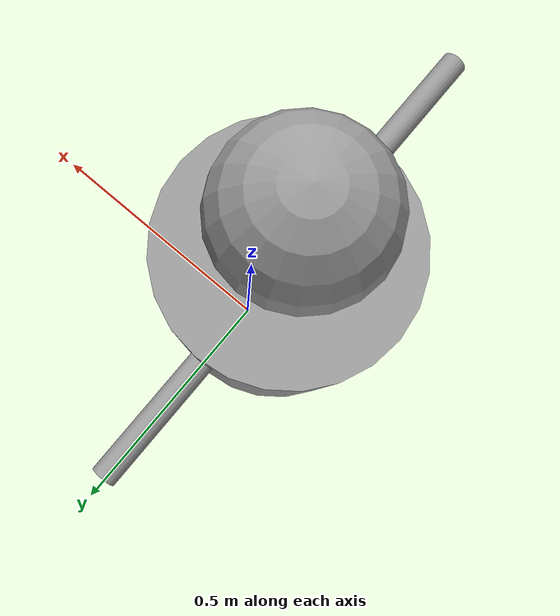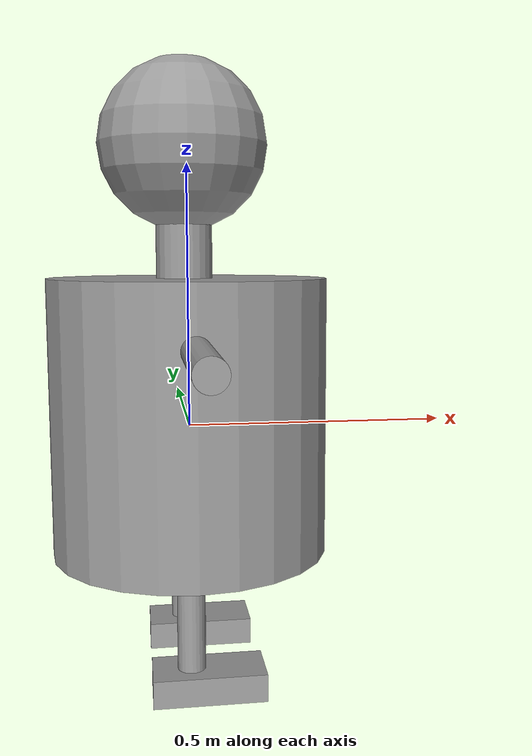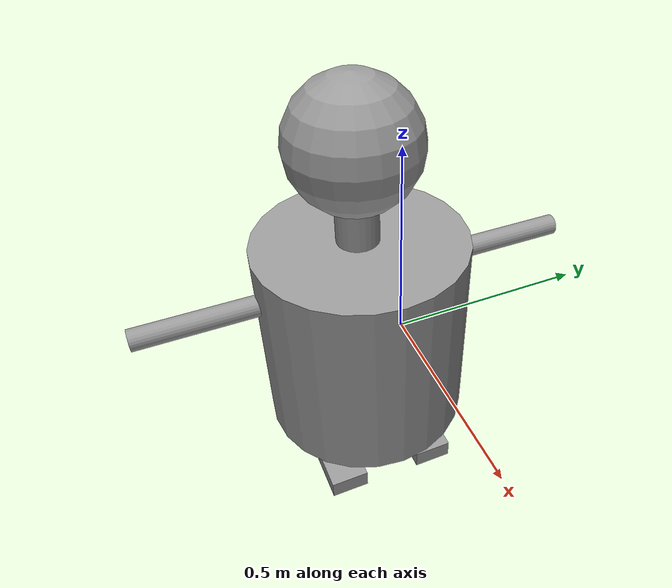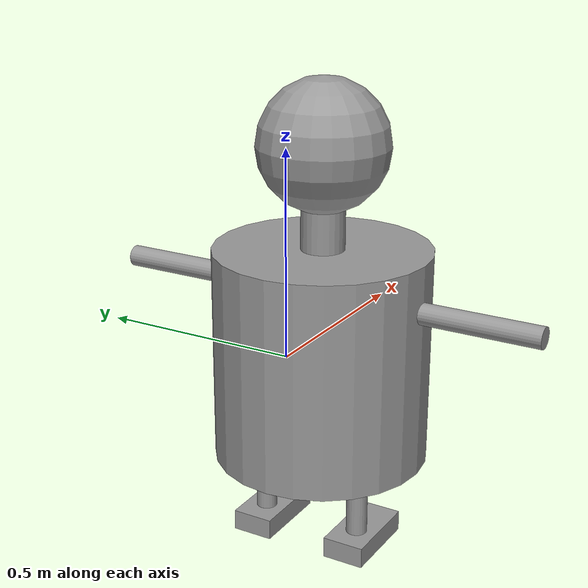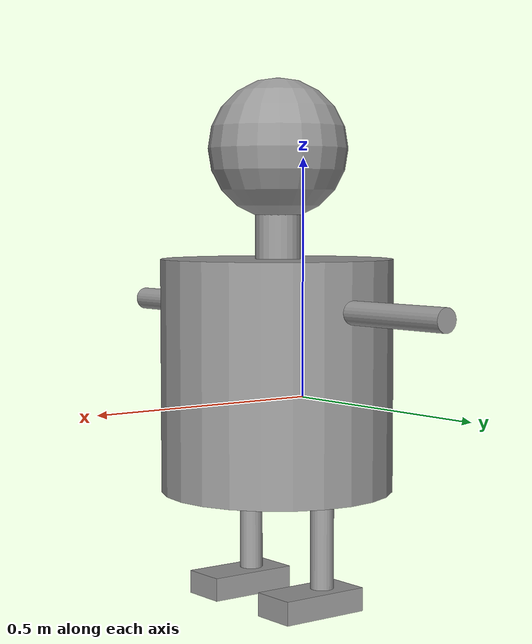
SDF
<?xml version='1.0'?>
<sdf version='1.6'>
  <model name='robo'>
    <link name='link_2'>
      <pose frame=''>-0.009972 0.272275 0.184267 1.5707 -0 0</pose>
      <inertial>
        <mass>1</mass>
        <inertia>
          <ixx>0.145833</ixx>
          <ixy>0</ixy>
          <ixz>0</ixz>
          <iyy>0.145833</iyy>
          <iyz>0</iyz>
          <izz>0.125</izz>
        </inertia>
        <pose frame=''>0 0 0 0 -0 0</pose>
      </inertial>
      <gravity>1</gravity>
      <self_collide>0</self_collide>
      <kinematic>0</kinematic>
      <visual name='visual'>
        <pose frame=''>0 0 0 0 -0 0</pose>
        <geometry>
          <cylinder>
            <radius>0.025</radius>
            <length>0.3</length>
          </cylinder>
        </geometry>
        <material>
          <lighting>1</lighting>
          <script>
            <uri>file://media/materials/scripts/gazebo.material</uri>
            <name>Gazebo/Grey</name>
          </script>
          <shader type='pixel'>
            <normal_map>__default__</normal_map>
          </shader>
          <ambient>0.3 0.3 0.3 1</ambient>
          <diffuse>0.7 0.7 0.7 1</diffuse>
          <specular>0.01 0.01 0.01 1</specular>
          <emissive>0 0 0 1</emissive>
        </material>
        <transparency>0</transparency>
        <cast_shadows>1</cast_shadows>
      </visual>
      <collision name='collision'>
        <laser_retro>0</laser_retro>
        <max_contacts>10</max_contacts>
        <pose frame=''>0 0 0 0 -0 0</pose>
        <geometry>
          <cylinder>
            <radius>0.025</radius>
            <length>0.3</length>
          </cylinder>
        </geometry>
        <surface>
          <friction>
            <ode>
              <mu>1</mu>
              <mu2>1</mu2>
              <fdir1>0 0 0</fdir1>
              <slip1>0</slip1>
              <slip2>0</slip2>
            </ode>
            <torsional>
              <coefficient>1</coefficient>
              <patch_radius>0</patch_radius>
              <surface_radius>0</surface_radius>
              <use_patch_radius>1</use_patch_radius>
              <ode>
                <slip>0</slip>
              </ode>
            </torsional>
          </friction>
          <bounce>
            <restitution_coefficient>0</restitution_coefficient>
            <threshold>1e+06</threshold>
          </bounce>
          <contact>
            <collide_without_contact>0</collide_without_contact>
            <collide_without_contact_bitmask>1</collide_without_contact_bitmask>
            <collide_bitmask>1</collide_bitmask>
            <ode>
              <soft_cfm>0</soft_cfm>
              <soft_erp>0.2</soft_erp>
              <kp>1e+13</kp>
              <kd>1</kd>
              <max_vel>0.01</max_vel>
              <min_depth>0</min_depth>
            </ode>
            <bullet>
              <split_impulse>1</split_impulse>
              <split_impulse_penetration_threshold>-0.01</split_impulse_penetration_threshold>
              <soft_cfm>0</soft_cfm>
              <soft_erp>0.2</soft_erp>
              <kp>1e+13</kp>
              <kd>1</kd>
            </bullet>
          </contact>
        </surface>
      </collision>
    </link>
    <model name='robo'>
      <link name='link_0'>
        <pose frame=''>-0.022046 0.170448 0.516594 0 -0 0</pose>
        <inertial>
          <mass>1</mass>
          <inertia>
            <ixx>0.145833</ixx>
            <ixy>0</ixy>
            <ixz>0</ixz>
            <iyy>0.145833</iyy>
            <iyz>0</iyz>
            <izz>0.125</izz>
          </inertia>
          <pose frame=''>0 0 0 0 -0 0</pose>
        </inertial>
        <gravity>1</gravity>
        <self_collide>0</self_collide>
        <kinematic>0</kinematic>
        <visual name='visual'>
          <pose frame=''>0 0 0 0 -0 0</pose>
          <geometry>
            <cylinder>
              <radius>0.05</radius>
              <length>0.1</length>
            </cylinder>
          </geometry>
          <material>
            <lighting>1</lighting>
            <script>
              <uri>file://media/materials/scripts/gazebo.material</uri>
              <name>Gazebo/Grey</name>
            </script>
            <shader type='pixel'>
              <normal_map>__default__</normal_map>
            </shader>
            <ambient>0.3 0.3 0.3 1</ambient>
            <diffuse>0.7 0.7 0.7 1</diffuse>
            <specular>0.01 0.01 0.01 1</specular>
            <emissive>0 0 0 1</emissive>
          </material>
          <transparency>0</transparency>
          <cast_shadows>1</cast_shadows>
        </visual>
        <collision name='collision'>
          <laser_retro>0</laser_retro>
          <max_contacts>10</max_contacts>
          <pose frame=''>0 0 0 0 -0 0</pose>
          <geometry>
            <cylinder>
              <radius>0.05</radius>
              <length>0.1</length>
            </cylinder>
          </geometry>
          <surface>
            <friction>
              <ode>
                <mu>1</mu>
                <mu2>1</mu2>
                <fdir1>0 0 0</fdir1>
                <slip1>0</slip1>
                <slip2>0</slip2>
              </ode>
              <torsional>
                <coefficient>1</coefficient>
                <patch_radius>0</patch_radius>
                <surface_radius>0</surface_radius>
                <use_patch_radius>1</use_patch_radius>
                <ode>
                  <slip>0</slip>
                </ode>
              </torsional>
            </friction>
            <bounce>
              <restitution_coefficient>0</restitution_coefficient>
              <threshold>1e+06</threshold>
            </bounce>
            <contact>
              <collide_without_contact>0</collide_without_contact>
              <collide_without_contact_bitmask>1</collide_without_contact_bitmask>
              <collide_bitmask>1</collide_bitmask>
              <ode>
                <soft_cfm>0</soft_cfm>
                <soft_erp>0.2</soft_erp>
                <kp>1e+13</kp>
                <kd>1</kd>
                <max_vel>0.01</max_vel>
                <min_depth>0</min_depth>
              </ode>
              <bullet>
                <split_impulse>1</split_impulse>
                <split_impulse_penetration_threshold>-0.01</split_impulse_penetration_threshold>
                <soft_cfm>0</soft_cfm>
                <soft_erp>0.2</soft_erp>
                <kp>1e+13</kp>
                <kd>1</kd>
              </bullet>
            </contact>
          </surface>
        </collision>
      </link>
      <link name='link_1'>
        <pose frame=''>-0.022046 0.170448 0.706594 0 -0 0</pose>
        <inertial>
          <mass>1</mass>
          <inertia>
            <ixx>0.1</ixx>
            <ixy>0</ixy>
            <ixz>0</ixz>
            <iyy>0.1</iyy>
            <iyz>0</iyz>
            <izz>0.1</izz>
          </inertia>
          <pose frame=''>0 0 0 0 -0 0</pose>
        </inertial>
        <gravity>1</gravity>
        <self_collide>0</self_collide>
        <kinematic>0</kinematic>
        <visual name='visual'>
          <pose frame=''>0 0 0 0 -0 0</pose>
          <geometry>
            <sphere>
              <radius>0.15</radius>
            </sphere>
          </geometry>
          <material>
            <lighting>1</lighting>
            <script>
              <uri>file://media/materials/scripts/gazebo.material</uri>
              <name>Gazebo/Grey</name>
            </script>
            <shader type='pixel'>
              <normal_map>__default__</normal_map>
            </shader>
            <ambient>0.3 0.3 0.3 1</ambient>
            <diffuse>0.7 0.7 0.7 1</diffuse>
            <specular>0.01 0.01 0.01 1</specular>
            <emissive>0 0 0 1</emissive>
          </material>
          <transparency>0</transparency>
          <cast_shadows>1</cast_shadows>
        </visual>
        <collision name='collision'>
          <laser_retro>0</laser_retro>
          <max_contacts>10</max_contacts>
          <pose frame=''>0 0 0 0 -0 0</pose>
          <geometry>
            <sphere>
              <radius>0.15</radius>
            </sphere>
          </geometry>
          <surface>
            <friction>
              <ode>
                <mu>1</mu>
                <mu2>1</mu2>
                <fdir1>0 0 0</fdir1>
                <slip1>0</slip1>
                <slip2>0</slip2>
              </ode>
              <torsional>
                <coefficient>1</coefficient>
                <patch_radius>0</patch_radius>
                <surface_radius>0</surface_radius>
                <use_patch_radius>1</use_patch_radius>
                <ode>
                  <slip>0</slip>
                </ode>
              </torsional>
            </friction>
            <bounce>
              <restitution_coefficient>0</restitution_coefficient>
              <threshold>1e+06</threshold>
            </bounce>
            <contact>
              <collide_without_contact>0</collide_without_contact>
              <collide_without_contact_bitmask>1</collide_without_contact_bitmask>
              <collide_bitmask>1</collide_bitmask>
              <ode>
                <soft_cfm>0</soft_cfm>
                <soft_erp>0.2</soft_erp>
                <kp>1e+13</kp>
                <kd>1</kd>
                <max_vel>0.01</max_vel>
                <min_depth>0</min_depth>
              </ode>
              <bullet>
                <split_impulse>1</split_impulse>
                <split_impulse_penetration_threshold>-0.01</split_impulse_penetration_threshold>
                <soft_cfm>0</soft_cfm>
                <soft_erp>0.2</soft_erp>
                <kp>1e+13</kp>
                <kd>1</kd>
              </bullet>
            </contact>
          </surface>
        </collision>
      </link>
      <link name='link_2'>
        <pose frame=''>-0.017639 -0.200888 0.36402 -1.5707 0 0</pose>
        <inertial>
          <mass>1</mass>
          <inertia>
            <ixx>0.145833</ixx>
            <ixy>0</ixy>
            <ixz>0</ixz>
            <iyy>0.145833</iyy>
            <iyz>0</iyz>
            <izz>0.125</izz>
          </inertia>
          <pose frame=''>0 0 0 0 -0 0</pose>
        </inertial>
        <gravity>1</gravity>
        <self_collide>0</self_collide>
        <kinematic>0</kinematic>
        <visual name='visual'>
          <pose frame=''>0 0 0 0 -0 0</pose>
          <geometry>
            <cylinder>
              <radius>0.025</radius>
              <length>0.3</length>
            </cylinder>
          </geometry>
          <material>
            <lighting>1</lighting>
            <script>
              <uri>file://media/materials/scripts/gazebo.material</uri>
              <name>Gazebo/Grey</name>
            </script>
            <shader type='pixel'>
              <normal_map>__default__</normal_map>
            </shader>
            <ambient>0.3 0.3 0.3 1</ambient>
            <diffuse>0.7 0.7 0.7 1</diffuse>
            <specular>0.01 0.01 0.01 1</specular>
            <emissive>0 0 0 1</emissive>
          </material>
          <transparency>0</transparency>
          <cast_shadows>1</cast_shadows>
        </visual>
        <collision name='collision'>
          <laser_retro>0</laser_retro>
          <max_contacts>10</max_contacts>
          <pose frame=''>0 0 0 0 -0 0</pose>
          <geometry>
            <cylinder>
              <radius>0.025</radius>
              <length>0.3</length>
            </cylinder>
          </geometry>
          <surface>
            <friction>
              <ode>
                <mu>1</mu>
                <mu2>1</mu2>
                <fdir1>0 0 0</fdir1>
                <slip1>0</slip1>
                <slip2>0</slip2>
              </ode>
              <torsional>
                <coefficient>1</coefficient>
                <patch_radius>0</patch_radius>
                <surface_radius>0</surface_radius>
                <use_patch_radius>1</use_patch_radius>
                <ode>
                  <slip>0</slip>
                </ode>
              </torsional>
            </friction>
            <bounce>
              <restitution_coefficient>0</restitution_coefficient>
              <threshold>1e+06</threshold>
            </bounce>
            <contact>
              <collide_without_contact>0</collide_without_contact>
              <collide_without_contact_bitmask>1</collide_without_contact_bitmask>
              <collide_bitmask>1</collide_bitmask>
              <ode>
                <soft_cfm>0</soft_cfm>
                <soft_erp>0.2</soft_erp>
                <kp>1e+13</kp>
                <kd>1</kd>
                <max_vel>0.01</max_vel>
                <min_depth>0</min_depth>
              </ode>
              <bullet>
                <split_impulse>1</split_impulse>
                <split_impulse_penetration_threshold>-0.01</split_impulse_penetration_threshold>
                <soft_cfm>0</soft_cfm>
                <soft_erp>0.2</soft_erp>
                <kp>1e+13</kp>
                <kd>1</kd>
              </bullet>
            </contact>
          </surface>
        </collision>
      </link>
      <model name='robo'>
        <link name='link_0'>
          <pose frame=''>0.001824 0.004556 -0.057915 0 -0 0</pose>
          <inertial>
            <mass>1</mass>
            <inertia>
              <ixx>0.166667</ixx>
              <ixy>0</ixy>
              <ixz>0</ixz>
              <iyy>0.166667</iyy>
              <iyz>0</iyz>
              <izz>0.166667</izz>
            </inertia>
            <pose frame=''>0 0 0 0 -0 0</pose>
          </inertial>
          <gravity>1</gravity>
          <self_collide>0</self_collide>
          <kinematic>0</kinematic>
          <visual name='visual'>
            <pose frame=''>0 0 0 0 -0 0</pose>
            <geometry>
              <box>
                <size>0.2 0.1 0.05</size>
              </box>
            </geometry>
            <material>
              <lighting>1</lighting>
              <script>
                <uri>file://media/materials/scripts/gazebo.material</uri>
                <name>Gazebo/Grey</name>
              </script>
              <shader type='pixel'>
                <normal_map>__default__</normal_map>
              </shader>
              <ambient>0.3 0.3 0.3 1</ambient>
              <diffuse>0.7 0.7 0.7 1</diffuse>
              <specular>0.01 0.01 0.01 1</specular>
              <emissive>0 0 0 1</emissive>
            </material>
            <transparency>0</transparency>
            <cast_shadows>1</cast_shadows>
          </visual>
          <collision name='collision'>
            <laser_retro>0</laser_retro>
            <max_contacts>10</max_contacts>
            <pose frame=''>0 0 0 0 -0 0</pose>
            <geometry>
              <box>
                <size>0.2 0.1 0.05</size>
              </box>
            </geometry>
            <surface>
              <friction>
                <ode>
                  <mu>1</mu>
                  <mu2>1</mu2>
                  <fdir1>0 0 0</fdir1>
                  <slip1>0</slip1>
                  <slip2>0</slip2>
                </ode>
                <torsional>
                  <coefficient>1</coefficient>
                  <patch_radius>0</patch_radius>
                  <surface_radius>0</surface_radius>
                  <use_patch_radius>1</use_patch_radius>
                  <ode>
                    <slip>0</slip>
                  </ode>
                </torsional>
              </friction>
              <bounce>
                <restitution_coefficient>0</restitution_coefficient>
                <threshold>1e+06</threshold>
              </bounce>
              <contact>
                <collide_without_contact>0</collide_without_contact>
                <collide_without_contact_bitmask>1</collide_without_contact_bitmask>
                <collide_bitmask>1</collide_bitmask>
                <ode>
                  <soft_cfm>0</soft_cfm>
                  <soft_erp>0.2</soft_erp>
                  <kp>1e+13</kp>
                  <kd>1</kd>
                  <max_vel>0.01</max_vel>
                  <min_depth>0</min_depth>
                </ode>
                <bullet>
                  <split_impulse>1</split_impulse>
                  <split_impulse_penetration_threshold>-0.01</split_impulse_penetration_threshold>
                  <soft_cfm>0</soft_cfm>
                  <soft_erp>0.2</soft_erp>
                  <kp>1e+13</kp>
                  <kd>1</kd>
                </bullet>
              </contact>
            </surface>
          </collision>
        </link>
        <link name='link_0_clone'>
          <pose frame=''>0.001824 0.254556 -0.057915 0 -0 0</pose>
          <inertial>
            <mass>1</mass>
            <inertia>
              <ixx>0.166667</ixx>
              <ixy>0</ixy>
              <ixz>0</ixz>
              <iyy>0.166667</iyy>
              <iyz>0</iyz>
              <izz>0.166667</izz>
            </inertia>
            <pose frame=''>0 0 0 0 -0 0</pose>
          </inertial>
          <self_collide>0</self_collide>
          <kinematic>0</kinematic>
          <gravity>1</gravity>
          <visual name='visual'>
            <pose frame=''>0 0 0 0 -0 0</pose>
            <geometry>
              <box>
                <size>0.2 0.1 0.05</size>
              </box>
            </geometry>
            <material>
              <lighting>1</lighting>
              <script>
                <uri>file://media/materials/scripts/gazebo.material</uri>
                <name>Gazebo/Grey</name>
              </script>
              <shader type='pixel'>
                <normal_map>__default__</normal_map>
              </shader>
              <ambient>0.3 0.3 0.3 1</ambient>
              <diffuse>0.7 0.7 0.7 1</diffuse>
              <specular>0.01 0.01 0.01 1</specular>
              <emissive>0 0 0 1</emissive>
            </material>
            <transparency>0</transparency>
            <cast_shadows>1</cast_shadows>
          </visual>
          <collision name='collision'>
            <laser_retro>0</laser_retro>
            <max_contacts>10</max_contacts>
            <pose frame=''>0 0 0 0 -0 0</pose>
            <geometry>
              <box>
                <size>0.2 0.1 0.05</size>
              </box>
            </geometry>
            <surface>
              <friction>
                <ode>
                  <mu>1</mu>
                  <mu2>1</mu2>
                  <fdir1>0 0 0</fdir1>
                  <slip1>0</slip1>
                  <slip2>0</slip2>
                </ode>
                <torsional>
                  <coefficient>1</coefficient>
                  <patch_radius>0</patch_radius>
                  <surface_radius>0</surface_radius>
                  <use_patch_radius>1</use_patch_radius>
                  <ode>
                    <slip>0</slip>
                  </ode>
                </torsional>
              </friction>
              <bounce>
                <restitution_coefficient>0</restitution_coefficient>
                <threshold>1e+06</threshold>
              </bounce>
              <contact>
                <collide_without_contact>0</collide_without_contact>
                <collide_without_contact_bitmask>1</collide_without_contact_bitmask>
                <collide_bitmask>1</collide_bitmask>
                <ode>
                  <soft_cfm>0</soft_cfm>
                  <soft_erp>0.2</soft_erp>
                  <kp>1e+13</kp>
                  <kd>1</kd>
                  <max_vel>0.01</max_vel>
                  <min_depth>0</min_depth>
                </ode>
                <bullet>
                  <split_impulse>1</split_impulse>
                  <split_impulse_penetration_threshold>-0.01</split_impulse_penetration_threshold>
                  <soft_cfm>0</soft_cfm>
                  <soft_erp>0.2</soft_erp>
                  <kp>1e+13</kp>
                  <kd>1</kd>
                </bullet>
              </contact>
            </surface>
          </collision>
        </link>
        <link name='link_1'>
          <pose frame=''>-0.028176 0.004556 0.042085 0 -0 0</pose>
          <inertial>
            <mass>1</mass>
            <inertia>
              <ixx>0.145833</ixx>
              <ixy>0</ixy>
              <ixz>0</ixz>
              <iyy>0.145833</iyy>
              <iyz>0</iyz>
              <izz>0.125</izz>
            </inertia>
            <pose frame=''>0 0 0 0 -0 0</pose>
          </inertial>
          <gravity>1</gravity>
          <self_collide>0</self_collide>
          <kinematic>0</kinematic>
          <visual name='visual'>
            <pose frame=''>0 0 0 0 -0 0</pose>
            <geometry>
              <cylinder>
                <radius>0.025</radius>
                <length>0.25</length>
              </cylinder>
            </geometry>
            <material>
              <lighting>1</lighting>
              <script>
                <uri>file://media/materials/scripts/gazebo.material</uri>
                <name>Gazebo/Grey</name>
              </script>
              <shader type='pixel'>
                <normal_map>__default__</normal_map>
              </shader>
              <ambient>0.3 0.3 0.3 1</ambient>
              <diffuse>0.7 0.7 0.7 1</diffuse>
              <specular>0.01 0.01 0.01 1</specular>
              <emissive>0 0 0 1</emissive>
            </material>
            <transparency>0</transparency>
            <cast_shadows>1</cast_shadows>
          </visual>
          <collision name='collision'>
            <laser_retro>0</laser_retro>
            <max_contacts>10</max_contacts>
            <pose frame=''>0 0 0 0 -0 0</pose>
            <geometry>
              <cylinder>
                <radius>0.025</radius>
                <length>0.25</length>
              </cylinder>
            </geometry>
            <surface>
              <friction>
                <ode>
                  <mu>1</mu>
                  <mu2>1</mu2>
                  <fdir1>0 0 0</fdir1>
                  <slip1>0</slip1>
                  <slip2>0</slip2>
                </ode>
                <torsional>
                  <coefficient>1</coefficient>
                  <patch_radius>0</patch_radius>
                  <surface_radius>0</surface_radius>
                  <use_patch_radius>1</use_patch_radius>
                  <ode>
                    <slip>0</slip>
                  </ode>
                </torsional>
              </friction>
              <bounce>
                <restitution_coefficient>0</restitution_coefficient>
                <threshold>1e+06</threshold>
              </bounce>
              <contact>
                <collide_without_contact>0</collide_without_contact>
                <collide_without_contact_bitmask>1</collide_without_contact_bitmask>
                <collide_bitmask>1</collide_bitmask>
                <ode>
                  <soft_cfm>0</soft_cfm>
                  <soft_erp>0.2</soft_erp>
                  <kp>1e+13</kp>
                  <kd>1</kd>
                  <max_vel>0.01</max_vel>
                  <min_depth>0</min_depth>
                </ode>
                <bullet>
                  <split_impulse>1</split_impulse>
                  <split_impulse_penetration_threshold>-0.01</split_impulse_penetration_threshold>
                  <soft_cfm>0</soft_cfm>
                  <soft_erp>0.2</soft_erp>
                  <kp>1e+13</kp>
                  <kd>1</kd>
                </bullet>
              </contact>
            </surface>
          </collision>
        </link>
        <link name='link_1_clone'>
          <pose frame=''>-0.028176 0.254556 0.042085 0 -0 0</pose>
          <inertial>
            <mass>1</mass>
            <inertia>
              <ixx>0.145833</ixx>
              <ixy>0</ixy>
              <ixz>0</ixz>
              <iyy>0.145833</iyy>
              <iyz>0</iyz>
              <izz>0.125</izz>
            </inertia>
            <pose frame=''>0 0 0 0 -0 0</pose>
          </inertial>
          <self_collide>0</self_collide>
          <kinematic>0</kinematic>
          <visual name='visual'>
            <pose frame=''>0 0 0 0 -0 0</pose>
            <geometry>
              <cylinder>
                <radius>0.025</radius>
                <length>0.25</length>
              </cylinder>
            </geometry>
            <material>
              <lighting>1</lighting>
              <script>
                <uri>file://media/materials/scripts/gazebo.material</uri>
                <name>Gazebo/Grey</name>
              </script>
              <shader type='pixel'>
                <normal_map>__default__</normal_map>
              </shader>
              <ambient>0.3 0.3 0.3 1</ambient>
              <diffuse>0.7 0.7 0.7 1</diffuse>
              <specular>0.01 0.01 0.01 1</specular>
              <emissive>0 0 0 1</emissive>
            </material>
            <transparency>0</transparency>
            <cast_shadows>1</cast_shadows>
          </visual>
          <collision name='collision'>
            <laser_retro>0</laser_retro>
            <max_contacts>10</max_contacts>
            <pose frame=''>0 0 0 0 -0 0</pose>
            <geometry>
              <cylinder>
                <radius>0.025</radius>
                <length>0.25</length>
              </cylinder>
            </geometry>
            <surface>
              <friction>
                <ode>
                  <mu>1</mu>
                  <mu2>1</mu2>
                  <fdir1>0 0 0</fdir1>
                  <slip1>0</slip1>
                  <slip2>0</slip2>
                </ode>
                <torsional>
                  <coefficient>1</coefficient>
                  <patch_radius>0</patch_radius>
                  <surface_radius>0</surface_radius>
                  <use_patch_radius>1</use_patch_radius>
                  <ode>
                    <slip>0</slip>
                  </ode>
                </torsional>
              </friction>
              <bounce>
                <restitution_coefficient>0</restitution_coefficient>
                <threshold>1e+06</threshold>
              </bounce>
              <contact>
                <collide_without_contact>0</collide_without_contact>
                <collide_without_contact_bitmask>1</collide_without_contact_bitmask>
                <collide_bitmask>1</collide_bitmask>
                <ode>
                  <soft_cfm>0</soft_cfm>
                  <soft_erp>0.2</soft_erp>
                  <kp>1e+13</kp>
                  <kd>1</kd>
                  <max_vel>0.01</max_vel>
                  <min_depth>0</min_depth>
                </ode>
                <bullet>
                  <split_impulse>1</split_impulse>
                  <split_impulse_penetration_threshold>-0.01</split_impulse_penetration_threshold>
                  <soft_cfm>0</soft_cfm>
                  <soft_erp>0.2</soft_erp>
                  <kp>1e+13</kp>
                  <kd>1</kd>
                </bullet>
              </contact>
            </surface>
          </collision>
        </link>
        <link name='link_2'>
          <pose frame=''>-0.022294 0.106777 0.406659 0 -0 0</pose>
          <inertial>
            <mass>1</mass>
            <inertia>
              <ixx>0.145833</ixx>
              <ixy>0</ixy>
              <ixz>0</ixz>
              <iyy>0.145833</iyy>
              <iyz>0</iyz>
              <izz>0.125</izz>
            </inertia>
            <pose frame=''>0 0 0 0 -0 0</pose>
          </inertial>
          <gravity>1</gravity>
          <self_collide>0</self_collide>
          <kinematic>0</kinematic>
          <visual name='visual'>
            <pose frame=''>0 0 0 0 -0 0</pose>
            <geometry>
              <cylinder>
                <radius>0.25</radius>
                <length>0.5</length>
              </cylinder>
            </geometry>
            <material>
              <lighting>1</lighting>
              <script>
                <uri>file://media/materials/scripts/gazebo.material</uri>
                <name>Gazebo/Grey</name>
              </script>
              <shader type='pixel'>
                <normal_map>__default__</normal_map>
              </shader>
              <ambient>0.3 0.3 0.3 1</ambient>
              <diffuse>0.7 0.7 0.7 1</diffuse>
              <specular>0.01 0.01 0.01 1</specular>
              <emissive>0 0 0 1</emissive>
            </material>
            <transparency>0</transparency>
            <cast_shadows>1</cast_shadows>
          </visual>
          <collision name='collision'>
            <laser_retro>0</laser_retro>
            <max_contacts>10</max_contacts>
            <pose frame=''>0 0 0 0 -0 0</pose>
            <geometry>
              <cylinder>
                <radius>0.25</radius>
                <length>0.5</length>
              </cylinder>
            </geometry>
            <surface>
              <friction>
                <ode>
                  <mu>1</mu>
                  <mu2>1</mu2>
                  <fdir1>0 0 0</fdir1>
                  <slip1>0</slip1>
                  <slip2>0</slip2>
                </ode>
                <torsional>
                  <coefficient>1</coefficient>
                  <patch_radius>0</patch_radius>
                  <surface_radius>0</surface_radius>
                  <use_patch_radius>1</use_patch_radius>
                  <ode>
                    <slip>0</slip>
                  </ode>
                </torsional>
              </friction>
              <bounce>
                <restitution_coefficient>0</restitution_coefficient>
                <threshold>1e+06</threshold>
              </bounce>
              <contact>
                <collide_without_contact>0</collide_without_contact>
                <collide_without_contact_bitmask>1</collide_without_contact_bitmask>
                <collide_bitmask>1</collide_bitmask>
                <ode>
                  <soft_cfm>0</soft_cfm>
                  <soft_erp>0.2</soft_erp>
                  <kp>1e+13</kp>
                  <kd>1</kd>
                  <max_vel>0.01</max_vel>
                  <min_depth>0</min_depth>
                </ode>
                <bullet>
                  <split_impulse>1</split_impulse>
                  <split_impulse_penetration_threshold>-0.01</split_impulse_penetration_threshold>
                  <soft_cfm>0</soft_cfm>
                  <soft_erp>0.2</soft_erp>
                  <kp>1e+13</kp>
                  <kd>1</kd>
                </bullet>
              </contact>
            </surface>
          </collision>
        </link>
        <joint name='link_0_clone_JOINT_2' type='fixed'>
          <parent>link_0_clone</parent>
          <child>link_1_clone</child>
          <pose frame=''>0 0 0 0 -0 0</pose>
          <physics>
            <ode>
              <limit>
                <cfm>0</cfm>
                <erp>0.2</erp>
              </limit>
              <suspension>
                <cfm>0</cfm>
                <erp>0.2</erp>
              </suspension>
            </ode>
          </physics>
        </joint>
        <joint name='link_1_JOINT_1' type='fixed'>
          <parent>link_0</parent>
          <child>link_1</child>
          <pose frame=''>0 0 0 0 -0 0</pose>
          <physics>
            <ode>
              <limit>
                <cfm>0</cfm>
                <erp>0.2</erp>
              </limit>
              <suspension>
                <cfm>0</cfm>
                <erp>0.2</erp>
              </suspension>
            </ode>
          </physics>
        </joint>
        <joint name='link_1_JOINT_3' type='fixed'>
          <parent>link_1</parent>
          <child>link_0</child>
          <pose frame=''>0 0 0 0 -0 0</pose>
          <physics>
            <ode>
              <limit>
                <cfm>0</cfm>
                <erp>0.2</erp>
              </limit>
              <suspension>
                <cfm>0</cfm>
                <erp>0.2</erp>
              </suspension>
            </ode>
          </physics>
        </joint>
        <static>0</static>
        <allow_auto_disable>1</allow_auto_disable>
        <pose frame=''>0.005879 0.066962 -0.184673 0 -0 0</pose>
      </model>
      <joint name='link_0_JOINT_5' type='revolute'>
        <parent>link_0</parent>
        <child>link_1</child>
        <pose frame=''>0 0 0 0 -0.27 0</pose>
        <axis>
          <xyz>0 0 1</xyz>
          <use_parent_model_frame>0</use_parent_model_frame>
          <limit>
            <lower>-1.79769e+308</lower>
            <upper>1.79769e+308</upper>
            <effort>-1</effort>
            <velocity>-1</velocity>
          </limit>
          <dynamics>
            <spring_reference>0</spring_reference>
            <spring_stiffness>0</spring_stiffness>
            <damping>0</damping>
          </dynamics>
        </axis>
        <physics>
          <ode>
            <limit>
              <cfm>0</cfm>
              <erp>0.2</erp>
            </limit>
            <suspension>
              <cfm>0</cfm>
              <erp>0.2</erp>
            </suspension>
          </ode>
        </physics>
      </joint>
      <joint name='link_1_JOINT_0' type='fixed'>
        <parent>robo::link_1</parent>
        <child>robo::link_2</child>
        <pose frame=''>0 0 0 0 -0 0</pose>
        <physics>
          <ode>
            <limit>
              <cfm>0</cfm>
              <erp>0.2</erp>
            </limit>
            <suspension>
              <cfm>0</cfm>
              <erp>0.2</erp>
            </suspension>
          </ode>
        </physics>
      </joint>
      <joint name='link_1_clone_JOINT_1' type='fixed'>
        <parent>robo::link_1_clone</parent>
        <child>robo::link_2</child>
        <pose frame=''>0 0 0 0 -0 0</pose>
        <physics>
          <ode>
            <limit>
              <cfm>0</cfm>
              <erp>0.2</erp>
            </limit>
            <suspension>
              <cfm>0</cfm>
              <erp>0.2</erp>
            </suspension>
          </ode>
        </physics>
      </joint>
      <joint name='link_2_JOINT_2' type='revolute'>
        <parent>robo::link_2</parent>
        <child>link_0</child>
        <pose frame=''>0 0 0 0 -0 0</pose>
        <axis>
          <xyz>1 0 0</xyz>
          <use_parent_model_frame>0</use_parent_model_frame>
          <limit>
            <lower>-1.79769e+308</lower>
            <upper>1.79769e+308</upper>
            <effort>-1</effort>
            <velocity>-1</velocity>
          </limit>
          <dynamics>
            <spring_reference>0</spring_reference>
            <spring_stiffness>0</spring_stiffness>
            <damping>0</damping>
          </dynamics>
        </axis>
        <physics>
          <ode>
            <limit>
              <cfm>0</cfm>
              <erp>0.2</erp>
            </limit>
            <suspension>
              <cfm>0</cfm>
              <erp>0.2</erp>
            </suspension>
          </ode>
        </physics>
      </joint>
      <static>0</static>
      <allow_auto_disable>1</allow_auto_disable>
      <pose frame=''>0.009972 -0.272275 -0.184267 0 -0 0</pose>
    </model>
    <joint name='link_2_JOINT_0' type='fixed'>
      <parent>robo::robo::link_2</parent>
      <child>link_2</child>
      <pose frame=''>0 0 0 0 -0 0</pose>
      <physics>
        <ode>
          <limit>
            <cfm>0</cfm>
            <erp>0.2</erp>
          </limit>
          <suspension>
            <cfm>0</cfm>
            <erp>0.2</erp>
          </suspension>
        </ode>
      </physics>
    </joint>
    <static>0</static>
    <allow_auto_disable>1</allow_auto_disable>
  </model>
</sdf>
